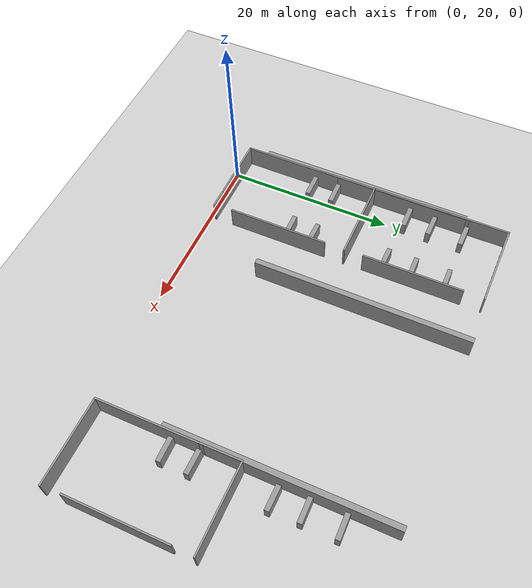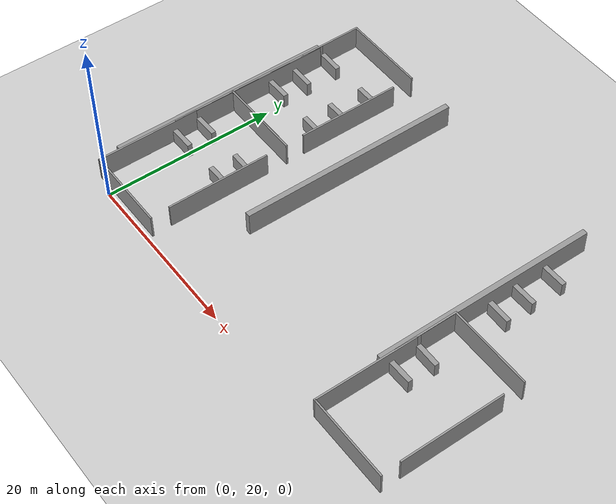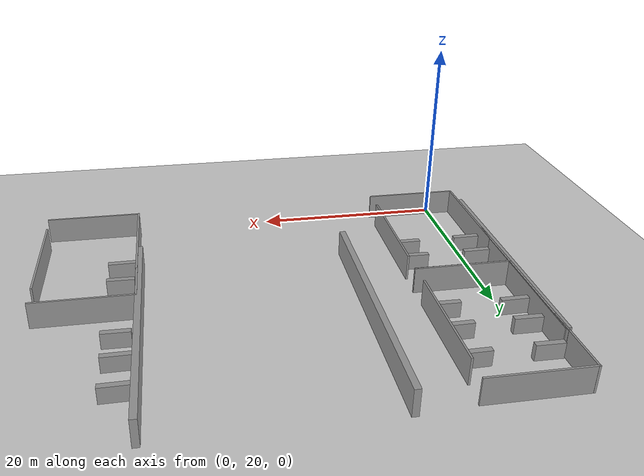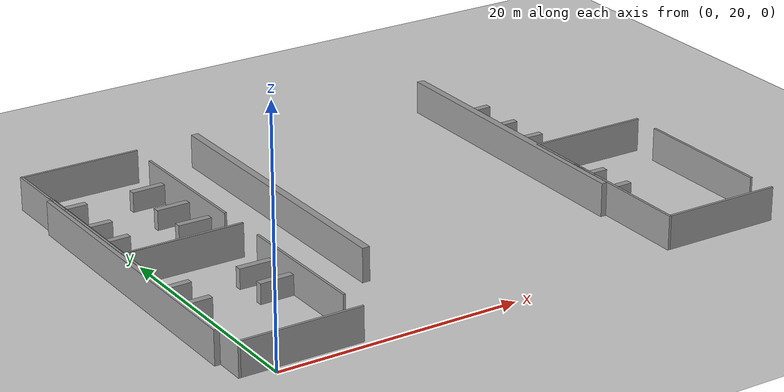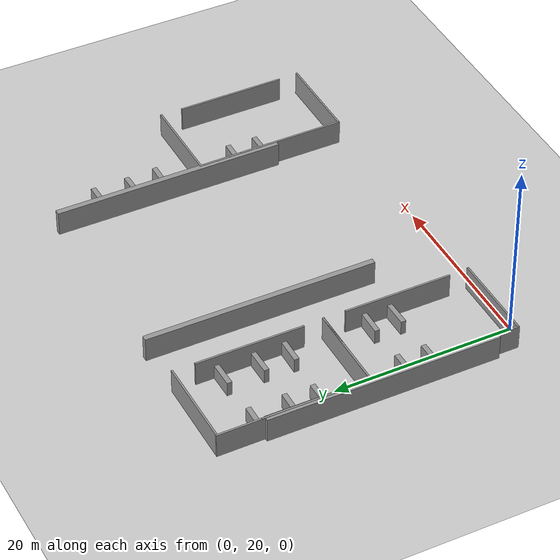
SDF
<sdf version="1.7">
 <world name="default">
  <model name="ground_plane">
   <static>1</static>
   <link name="link">
    <collision name="collision">
     <geometry><plane><normal>0 0 1</normal><size>100 100</size></plane></geometry>
     <surface><friction><ode><mu>100</mu><mu2>50</mu2></ode></friction></surface>
    </collision>
    <visual name="visual">
     <cast_shadows>0</cast_shadows>
     <geometry><plane><normal>0 0 1</normal><size>100 100</size></plane></geometry>
     <material>
      <script><uri>file://media/materials/scripts/gazebo.material</uri><name>Gazebo/Grey</name></script>
     </material>
    </visual>
   </link>
  </model>
  <model name="grew_wall_long_vertial_0">
   <model name="grey_wall_long">
    <link name="link">
     <pose>0 0 1.37589 0 -0 0</pose>
     <inertial>
      <inertia><ixx>0</ixx><ixy>0</ixy><ixz>0</ixz><iyy>0</iyy><iyz>0</iyz><izz>0</izz></inertia>
      <mass>0</mass>
     </inertial>
     <visual name="visual">
      <cast_shadows>0</cast_shadows>
      <geometry><box><size>25.8815 0.642976 2.8</size></box></geometry>
      <material>
       <script>
        <uri>model://grey_wall/materials/scripts</uri>
        <uri>model://grey_wall/materials/textures</uri>
        <name>vrc/grey_wall</name>
       </script>
       <shader type="pixel"><normal_map>__default__</normal_map></shader>
       <ambient>1 1 1 1</ambient>
       <diffuse>1 1 1 1</diffuse>
       <specular>0 0 0 1</specular>
       <emissive>0 0 0 1</emissive>
      </material>
     </visual>
     <collision name="collision">
      <geometry><box><size>25.8815 0.642976 2.8</size></box></geometry>
      <surface>
       <friction>
        <ode><mu>1</mu><mu2>1</mu2><fdir1>0 0 0</fdir1><slip1>0</slip1><slip2>0</slip2></ode>
        <torsional>
         <coefficient>1</coefficient>
         <patch_radius>0</patch_radius>
         <surface_radius>0</surface_radius>
         <use_patch_radius>1</use_patch_radius>
         <ode><slip>0</slip></ode>
        </torsional>
       </friction>
       <bounce><restitution_coefficient>0</restitution_coefficient><threshold>1e+06</threshold></bounce>
       <contact>
        <collide_without_contact>0</collide_without_contact>
        <collide_without_contact_bitmask>1</collide_without_contact_bitmask>
        <collide_bitmask>1</collide_bitmask>
        <ode>
         <soft_cfm>0</soft_cfm>
         <soft_erp>0.2</soft_erp>
         <kp>1e+13</kp>
         <kd>1</kd>
         <max_vel>0.01</max_vel>
         <min_depth>0</min_depth>
        </ode>
        <bullet>
         <split_impulse>1</split_impulse>
         <split_impulse_penetration_threshold>-0.01</split_impulse_penetration_threshold>
         <soft_cfm>0</soft_cfm>
         <soft_erp>0.2</soft_erp>
         <kp>1e+13</kp>
         <kd>1</kd>
        </bullet>
       </contact>
      </surface>
     </collision>
    </link>
    <static>1</static>
    <pose>1e-06 -0 0 0 -0 1.57003</pose>
   </model>
   <static>0</static>
   <pose>-2.79602 36.045 0 0 -0 0</pose>
  </model>
  <model name="jiaoshi_clone">
   <model name="grey_wall">
    <static>1</static>
    <link name="link">
     <pose>0 0 1.4 0 -0 0</pose>
     <collision name="collision"><geometry><box><size>7.5 0.2 2.8</size></box></geometry></collision>
     <visual name="visual">
      <cast_shadows>0</cast_shadows>
      <geometry><box><size>7.5 0.2 2.8</size></box></geometry>
      <material>
       <script>
        <uri>model://grey_wall/materials/scripts</uri>
        <uri>model://grey_wall/materials/textures</uri>
        <name>vrc/grey_wall</name>
       </script>
      </material>
     </visual>
    </link>
    <pose>-3.38172 4.2623 0 0 0 -1.56473</pose>
   </model>
   <model name="grey_wall_10m">
    <link name="link">
     <pose>1.25079 -0.023082 1.4 0 -0 0</pose>
     <inertial>
      <inertia><ixx>0</ixx><ixy>0</ixy><ixz>0</ixz><iyy>0</iyy><iyz>0</iyz><izz>0</izz></inertia>
      <mass>0</mass>
     </inertial>
     <visual name="visual">
      <cast_shadows>0</cast_shadows>
      <geometry><box><size>10.0157 0.2 2.8</size></box></geometry>
      <material>
       <script>
        <uri>model://grey_wall/materials/scripts</uri>
        <uri>model://grey_wall/materials/textures</uri>
        <name>vrc/grey_wall</name>
       </script>
       <shader type="pixel"/>
       <ambient>1 1 1 1</ambient>
       <diffuse>1 1 1 1</diffuse>
       <specular>0 0 0 1</specular>
       <emissive>0 0 0 1</emissive>
      </material>
     </visual>
     <collision name="collision">
      <geometry><box><size>10.0157 0.2 2.8</size></box></geometry>
      <surface>
       <friction>
        <ode><mu>1</mu><mu2>1</mu2><fdir1>0 0 0</fdir1><slip1>0</slip1><slip2>0</slip2></ode>
        <torsional>
         <coefficient>1</coefficient>
         <patch_radius>0</patch_radius>
         <surface_radius>0</surface_radius>
         <use_patch_radius>1</use_patch_radius>
         <ode><slip>0</slip></ode>
        </torsional>
       </friction>
       <bounce><restitution_coefficient>0</restitution_coefficient><threshold>1e+06</threshold></bounce>
       <contact>
        <collide_without_contact>0</collide_without_contact>
        <collide_without_contact_bitmask>1</collide_without_contact_bitmask>
        <collide_bitmask>1</collide_bitmask>
        <ode>
         <soft_cfm>0</soft_cfm>
         <soft_erp>0.2</soft_erp>
         <kp>1e+13</kp>
         <kd>1</kd>
         <max_vel>0.01</max_vel>
         <min_depth>0</min_depth>
        </ode>
        <bullet>
         <split_impulse>1</split_impulse>
         <split_impulse_penetration_threshold>-0.01</split_impulse_penetration_threshold>
         <soft_cfm>0</soft_cfm>
         <soft_erp>0.2</soft_erp>
         <kp>1e+13</kp>
         <kd>1</kd>
        </bullet>
       </contact>
      </surface>
     </collision>
    </link>
    <static>1</static>
    <pose>0.433183 -8.77625 0 0 -0 0</pose>
   </model>
   <model name="grey_wall_10m_0">
    <link name="link">
     <pose>1.25079 -0.023082 1.4 0 -0 0</pose>
     <inertial>
      <inertia><ixx>0</ixx><ixy>0</ixy><ixz>0</ixz><iyy>0</iyy><iyz>0</iyz><izz>0</izz></inertia>
      <mass>0</mass>
     </inertial>
     <visual name="visual">
      <cast_shadows>0</cast_shadows>
      <geometry><box><size>10.0157 0.2 2.8</size></box></geometry>
      <material>
       <script>
        <uri>model://grey_wall/materials/scripts</uri>
        <uri>model://grey_wall/materials/textures</uri>
        <name>vrc/grey_wall</name>
       </script>
       <shader type="pixel"/>
       <ambient>1 1 1 1</ambient>
       <diffuse>1 1 1 1</diffuse>
       <specular>0 0 0 1</specular>
       <emissive>0 0 0 1</emissive>
      </material>
     </visual>
     <collision name="collision">
      <geometry><box><size>10.0157 0.2 2.8</size></box></geometry>
      <surface>
       <friction>
        <ode><mu>1</mu><mu2>1</mu2><fdir1>0 0 0</fdir1><slip1>0</slip1><slip2>0</slip2></ode>
        <torsional>
         <coefficient>1</coefficient>
         <patch_radius>0</patch_radius>
         <surface_radius>0</surface_radius>
         <use_patch_radius>1</use_patch_radius>
         <ode><slip>0</slip></ode>
        </torsional>
       </friction>
       <bounce><restitution_coefficient>0</restitution_coefficient><threshold>1e+06</threshold></bounce>
       <contact>
        <collide_without_contact>0</collide_without_contact>
        <collide_without_contact_bitmask>1</collide_without_contact_bitmask>
        <collide_bitmask>1</collide_bitmask>
        <ode>
         <soft_cfm>0</soft_cfm>
         <soft_erp>0.2</soft_erp>
         <kp>1e+13</kp>
         <kd>1</kd>
         <max_vel>0.01</max_vel>
         <min_depth>0</min_depth>
        </ode>
        <bullet>
         <split_impulse>1</split_impulse>
         <split_impulse_penetration_threshold>-0.01</split_impulse_penetration_threshold>
         <soft_cfm>0</soft_cfm>
         <soft_erp>0.2</soft_erp>
         <kp>1e+13</kp>
         <kd>1</kd>
        </bullet>
       </contact>
      </surface>
     </collision>
    </link>
    <static>1</static>
    <pose>0.377364 7.92573 0 0 -0 0</pose>
   </model>
   <model name="grey_wall_12m_vertial">
    <link name="link">
     <pose>0.289112 -0.003891 1.4 0 0 -1.5701</pose>
     <inertial>
      <inertia><ixx>0</ixx><ixy>0</ixy><ixz>0</ixz><iyy>0</iyy><iyz>0</iyz><izz>0</izz></inertia>
      <mass>0</mass>
     </inertial>
     <visual name="visual">
      <cast_shadows>0</cast_shadows>
      <geometry><box><size>12.0527 0.2 2.8</size></box></geometry>
      <material>
       <script>
        <uri>model://grey_wall/materials/scripts</uri>
        <uri>model://grey_wall/materials/textures</uri>
        <name>vrc/grey_wall</name>
       </script>
       <shader type="pixel"/>
       <ambient>1 1 1 1</ambient>
       <diffuse>1 1 1 1</diffuse>
       <specular>0 0 0 1</specular>
       <emissive>0 0 0 1</emissive>
      </material>
     </visual>
     <collision name="collision">
      <geometry><box><size>12.0527 0.2 2.8</size></box></geometry>
      <surface>
       <friction>
        <ode><mu>1</mu><mu2>1</mu2><fdir1>0 0 0</fdir1><slip1>0</slip1><slip2>0</slip2></ode>
        <torsional>
         <coefficient>1</coefficient>
         <patch_radius>0</patch_radius>
         <surface_radius>0</surface_radius>
         <use_patch_radius>1</use_patch_radius>
         <ode><slip>0</slip></ode>
        </torsional>
       </friction>
       <bounce><restitution_coefficient>0</restitution_coefficient><threshold>1e+06</threshold></bounce>
       <contact>
        <collide_without_contact>0</collide_without_contact>
        <collide_without_contact_bitmask>1</collide_without_contact_bitmask>
        <collide_bitmask>1</collide_bitmask>
        <ode>
         <soft_cfm>0</soft_cfm>
         <soft_erp>0.2</soft_erp>
         <kp>1e+13</kp>
         <kd>1</kd>
         <max_vel>0.01</max_vel>
         <min_depth>0</min_depth>
        </ode>
        <bullet>
         <split_impulse>1</split_impulse>
         <split_impulse_penetration_threshold>-0.01</split_impulse_penetration_threshold>
         <soft_cfm>0</soft_cfm>
         <soft_erp>0.2</soft_erp>
         <kp>1e+13</kp>
         <kd>1</kd>
        </bullet>
       </contact>
      </surface>
     </collision>
    </link>
    <static>1</static>
    <pose>-3.63668 -2.87268 0 0 -0 0</pose>
   </model>
   <model name="grey_wall_12m_vertial_0">
    <link name="link">
     <pose>0.289112 -0.003891 1.4 0 0 -1.5701</pose>
     <inertial>
      <inertia><ixx>0</ixx><ixy>0</ixy><ixz>0</ixz><iyy>0</iyy><iyz>0</iyz><izz>0</izz></inertia>
      <mass>0</mass>
     </inertial>
     <visual name="visual">
      <cast_shadows>0</cast_shadows>
      <geometry><box><size>12.0527 0.2 2.8</size></box></geometry>
      <material>
       <script>
        <uri>model://grey_wall/materials/scripts</uri>
        <uri>model://grey_wall/materials/textures</uri>
        <name>vrc/grey_wall</name>
       </script>
       <shader type="pixel"/>
       <ambient>1 1 1 1</ambient>
       <diffuse>1 1 1 1</diffuse>
       <specular>0 0 0 1</specular>
       <emissive>0 0 0 1</emissive>
      </material>
     </visual>
     <collision name="collision">
      <geometry><box><size>12.0527 0.2 2.8</size></box></geometry>
      <surface>
       <friction>
        <ode><mu>1</mu><mu2>1</mu2><fdir1>0 0 0</fdir1><slip1>0</slip1><slip2>0</slip2></ode>
        <torsional>
         <coefficient>1</coefficient>
         <patch_radius>0</patch_radius>
         <surface_radius>0</surface_radius>
         <use_patch_radius>1</use_patch_radius>
         <ode><slip>0</slip></ode>
        </torsional>
       </friction>
       <bounce><restitution_coefficient>0</restitution_coefficient><threshold>1e+06</threshold></bounce>
       <contact>
        <collide_without_contact>0</collide_without_contact>
        <collide_without_contact_bitmask>1</collide_without_contact_bitmask>
        <collide_bitmask>1</collide_bitmask>
        <ode>
         <soft_cfm>0</soft_cfm>
         <soft_erp>0.2</soft_erp>
         <kp>1e+13</kp>
         <kd>1</kd>
         <max_vel>0.01</max_vel>
         <min_depth>0</min_depth>
        </ode>
        <bullet>
         <split_impulse>1</split_impulse>
         <split_impulse_penetration_threshold>-0.01</split_impulse_penetration_threshold>
         <soft_cfm>0</soft_cfm>
         <soft_erp>0.2</soft_erp>
         <kp>1e+13</kp>
         <kd>1</kd>
        </bullet>
       </contact>
      </surface>
     </collision>
    </link>
    <static>1</static>
    <pose>6.20786 -0.539083 0 0 -0 0</pose>
   </model>
   <static>0</static>
   <pose>0.77997 29.5098 0 0 -0 0</pose>
  </model>
  <model name="jiaoshi_clone_clone">
   <model name="grey_wall">
    <static>1</static>
    <link name="link">
     <pose>0 0 1.4 0 -0 0</pose>
     <collision name="collision"><geometry><box><size>7.5 0.2 2.8</size></box></geometry></collision>
     <visual name="visual">
      <cast_shadows>0</cast_shadows>
      <geometry><box><size>7.5 0.2 2.8</size></box></geometry>
      <material>
       <script>
        <uri>model://grey_wall/materials/scripts</uri>
        <uri>model://grey_wall/materials/textures</uri>
        <name>vrc/grey_wall</name>
       </script>
      </material>
     </visual>
    </link>
    <pose>-3.38172 4.2623 0 0 0 -1.56473</pose>
   </model>
   <model name="grey_wall_10m">
    <link name="link">
     <pose>1.25079 -0.023082 1.4 0 -0 0</pose>
     <inertial>
      <inertia><ixx>0</ixx><ixy>0</ixy><ixz>0</ixz><iyy>0</iyy><iyz>0</iyz><izz>0</izz></inertia>
      <mass>0</mass>
     </inertial>
     <visual name="visual">
      <cast_shadows>0</cast_shadows>
      <geometry><box><size>10.0157 0.2 2.8</size></box></geometry>
      <material>
       <script>
        <uri>model://grey_wall/materials/scripts</uri>
        <uri>model://grey_wall/materials/textures</uri>
        <name>vrc/grey_wall</name>
       </script>
       <shader type="pixel"/>
       <ambient>1 1 1 1</ambient>
       <diffuse>1 1 1 1</diffuse>
       <specular>0 0 0 1</specular>
       <emissive>0 0 0 1</emissive>
      </material>
     </visual>
     <collision name="collision">
      <geometry><box><size>10.0157 0.2 2.8</size></box></geometry>
      <surface>
       <friction>
        <ode><mu>1</mu><mu2>1</mu2><fdir1>0 0 0</fdir1><slip1>0</slip1><slip2>0</slip2></ode>
        <torsional>
         <coefficient>1</coefficient>
         <patch_radius>0</patch_radius>
         <surface_radius>0</surface_radius>
         <use_patch_radius>1</use_patch_radius>
         <ode><slip>0</slip></ode>
        </torsional>
       </friction>
       <bounce><restitution_coefficient>0</restitution_coefficient><threshold>1e+06</threshold></bounce>
       <contact>
        <collide_without_contact>0</collide_without_contact>
        <collide_without_contact_bitmask>1</collide_without_contact_bitmask>
        <collide_bitmask>1</collide_bitmask>
        <ode>
         <soft_cfm>0</soft_cfm>
         <soft_erp>0.2</soft_erp>
         <kp>1e+13</kp>
         <kd>1</kd>
         <max_vel>0.01</max_vel>
         <min_depth>0</min_depth>
        </ode>
        <bullet>
         <split_impulse>1</split_impulse>
         <split_impulse_penetration_threshold>-0.01</split_impulse_penetration_threshold>
         <soft_cfm>0</soft_cfm>
         <soft_erp>0.2</soft_erp>
         <kp>1e+13</kp>
         <kd>1</kd>
        </bullet>
       </contact>
      </surface>
     </collision>
    </link>
    <static>1</static>
    <pose>0.433183 -8.77625 0 0 -0 0</pose>
   </model>
   <model name="grey_wall_10m_0">
    <link name="link">
     <pose>1.25079 -0.023082 1.4 0 -0 0</pose>
     <inertial>
      <inertia><ixx>0</ixx><ixy>0</ixy><ixz>0</ixz><iyy>0</iyy><iyz>0</iyz><izz>0</izz></inertia>
      <mass>0</mass>
     </inertial>
     <visual name="visual">
      <cast_shadows>0</cast_shadows>
      <geometry><box><size>10.0157 0.2 2.8</size></box></geometry>
      <material>
       <script>
        <uri>model://grey_wall/materials/scripts</uri>
        <uri>model://grey_wall/materials/textures</uri>
        <name>vrc/grey_wall</name>
       </script>
       <shader type="pixel"/>
       <ambient>1 1 1 1</ambient>
       <diffuse>1 1 1 1</diffuse>
       <specular>0 0 0 1</specular>
       <emissive>0 0 0 1</emissive>
      </material>
     </visual>
     <collision name="collision">
      <geometry><box><size>10.0157 0.2 2.8</size></box></geometry>
      <surface>
       <friction>
        <ode><mu>1</mu><mu2>1</mu2><fdir1>0 0 0</fdir1><slip1>0</slip1><slip2>0</slip2></ode>
        <torsional>
         <coefficient>1</coefficient>
         <patch_radius>0</patch_radius>
         <surface_radius>0</surface_radius>
         <use_patch_radius>1</use_patch_radius>
         <ode><slip>0</slip></ode>
        </torsional>
       </friction>
       <bounce><restitution_coefficient>0</restitution_coefficient><threshold>1e+06</threshold></bounce>
       <contact>
        <collide_without_contact>0</collide_without_contact>
        <collide_without_contact_bitmask>1</collide_without_contact_bitmask>
        <collide_bitmask>1</collide_bitmask>
        <ode>
         <soft_cfm>0</soft_cfm>
         <soft_erp>0.2</soft_erp>
         <kp>1e+13</kp>
         <kd>1</kd>
         <max_vel>0.01</max_vel>
         <min_depth>0</min_depth>
        </ode>
        <bullet>
         <split_impulse>1</split_impulse>
         <split_impulse_penetration_threshold>-0.01</split_impulse_penetration_threshold>
         <soft_cfm>0</soft_cfm>
         <soft_erp>0.2</soft_erp>
         <kp>1e+13</kp>
         <kd>1</kd>
        </bullet>
       </contact>
      </surface>
     </collision>
    </link>
    <static>1</static>
    <pose>0.377364 7.92573 0 0 -0 0</pose>
   </model>
   <model name="grey_wall_12m_vertial">
    <link name="link">
     <pose>0.289112 -0.003891 1.4 0 0 -1.5701</pose>
     <inertial>
      <inertia><ixx>0</ixx><ixy>0</ixy><ixz>0</ixz><iyy>0</iyy><iyz>0</iyz><izz>0</izz></inertia>
      <mass>0</mass>
     </inertial>
     <visual name="visual">
      <cast_shadows>0</cast_shadows>
      <geometry><box><size>12.0527 0.2 2.8</size></box></geometry>
      <material>
       <script>
        <uri>model://grey_wall/materials/scripts</uri>
        <uri>model://grey_wall/materials/textures</uri>
        <name>vrc/grey_wall</name>
       </script>
       <shader type="pixel"/>
       <ambient>1 1 1 1</ambient>
       <diffuse>1 1 1 1</diffuse>
       <specular>0 0 0 1</specular>
       <emissive>0 0 0 1</emissive>
      </material>
     </visual>
     <collision name="collision">
      <geometry><box><size>12.0527 0.2 2.8</size></box></geometry>
      <surface>
       <friction>
        <ode><mu>1</mu><mu2>1</mu2><fdir1>0 0 0</fdir1><slip1>0</slip1><slip2>0</slip2></ode>
        <torsional>
         <coefficient>1</coefficient>
         <patch_radius>0</patch_radius>
         <surface_radius>0</surface_radius>
         <use_patch_radius>1</use_patch_radius>
         <ode><slip>0</slip></ode>
        </torsional>
       </friction>
       <bounce><restitution_coefficient>0</restitution_coefficient><threshold>1e+06</threshold></bounce>
       <contact>
        <collide_without_contact>0</collide_without_contact>
        <collide_without_contact_bitmask>1</collide_without_contact_bitmask>
        <collide_bitmask>1</collide_bitmask>
        <ode>
         <soft_cfm>0</soft_cfm>
         <soft_erp>0.2</soft_erp>
         <kp>1e+13</kp>
         <kd>1</kd>
         <max_vel>0.01</max_vel>
         <min_depth>0</min_depth>
        </ode>
        <bullet>
         <split_impulse>1</split_impulse>
         <split_impulse_penetration_threshold>-0.01</split_impulse_penetration_threshold>
         <soft_cfm>0</soft_cfm>
         <soft_erp>0.2</soft_erp>
         <kp>1e+13</kp>
         <kd>1</kd>
        </bullet>
       </contact>
      </surface>
     </collision>
    </link>
    <static>1</static>
    <pose>-3.63668 -2.87268 0 0 -0 0</pose>
   </model>
   <model name="grey_wall_12m_vertial_0">
    <link name="link">
     <pose>0.289112 -0.003891 1.4 0 0 -1.5701</pose>
     <inertial>
      <inertia><ixx>0</ixx><ixy>0</ixy><ixz>0</ixz><iyy>0</iyy><iyz>0</iyz><izz>0</izz></inertia>
      <mass>0</mass>
     </inertial>
     <visual name="visual">
      <cast_shadows>0</cast_shadows>
      <geometry><box><size>12.0527 0.2 2.8</size></box></geometry>
      <material>
       <script>
        <uri>model://grey_wall/materials/scripts</uri>
        <uri>model://grey_wall/materials/textures</uri>
        <name>vrc/grey_wall</name>
       </script>
       <shader type="pixel"/>
       <ambient>1 1 1 1</ambient>
       <diffuse>1 1 1 1</diffuse>
       <specular>0 0 0 1</specular>
       <emissive>0 0 0 1</emissive>
      </material>
     </visual>
     <collision name="collision">
      <geometry><box><size>12.0527 0.2 2.8</size></box></geometry>
      <surface>
       <friction>
        <ode><mu>1</mu><mu2>1</mu2><fdir1>0 0 0</fdir1><slip1>0</slip1><slip2>0</slip2></ode>
        <torsional>
         <coefficient>1</coefficient>
         <patch_radius>0</patch_radius>
         <surface_radius>0</surface_radius>
         <use_patch_radius>1</use_patch_radius>
         <ode><slip>0</slip></ode>
        </torsional>
       </friction>
       <bounce><restitution_coefficient>0</restitution_coefficient><threshold>1e+06</threshold></bounce>
       <contact>
        <collide_without_contact>0</collide_without_contact>
        <collide_without_contact_bitmask>1</collide_without_contact_bitmask>
        <collide_bitmask>1</collide_bitmask>
        <ode>
         <soft_cfm>0</soft_cfm>
         <soft_erp>0.2</soft_erp>
         <kp>1e+13</kp>
         <kd>1</kd>
         <max_vel>0.01</max_vel>
         <min_depth>0</min_depth>
        </ode>
        <bullet>
         <split_impulse>1</split_impulse>
         <split_impulse_penetration_threshold>-0.01</split_impulse_penetration_threshold>
         <soft_cfm>0</soft_cfm>
         <soft_erp>0.2</soft_erp>
         <kp>1e+13</kp>
         <kd>1</kd>
        </bullet>
       </contact>
      </surface>
     </collision>
    </link>
    <static>1</static>
    <pose>6.20786 -0.539083 0 0 -0 0</pose>
   </model>
   <static>0</static>
   <pose>0.70017 46.2344 0 0 -0 0</pose>
  </model>
  <model name="grew_wall_long_vertial_1_clone">
   <model name="grey_wall_long">
    <link name="link">
     <pose>0 0 1.37589 0 -0 0</pose>
     <inertial>
      <inertia><ixx>0</ixx><ixy>0</ixy><ixz>0</ixz><iyy>0</iyy><iyz>0</iyz><izz>0</izz></inertia>
      <mass>0</mass>
     </inertial>
     <visual name="visual">
      <cast_shadows>0</cast_shadows>
      <geometry><box><size>25.8815 0.642976 2.8</size></box></geometry>
      <material>
       <script>
        <uri>model://grey_wall/materials/scripts</uri>
        <uri>model://grey_wall/materials/textures</uri>
        <name>vrc/grey_wall</name>
       </script>
       <shader type="pixel"><normal_map>__default__</normal_map></shader>
       <ambient>1 1 1 1</ambient>
       <diffuse>1 1 1 1</diffuse>
       <specular>0 0 0 1</specular>
       <emissive>0 0 0 1</emissive>
      </material>
     </visual>
     <collision name="collision">
      <geometry><box><size>25.8815 0.642976 2.8</size></box></geometry>
      <surface>
       <friction>
        <ode><mu>1</mu><mu2>1</mu2><fdir1>0 0 0</fdir1><slip1>0</slip1><slip2>0</slip2></ode>
        <torsional>
         <coefficient>1</coefficient>
         <patch_radius>0</patch_radius>
         <surface_radius>0</surface_radius>
         <use_patch_radius>1</use_patch_radius>
         <ode><slip>0</slip></ode>
        </torsional>
       </friction>
       <bounce><restitution_coefficient>0</restitution_coefficient><threshold>1e+06</threshold></bounce>
       <contact>
        <collide_without_contact>0</collide_without_contact>
        <collide_without_contact_bitmask>1</collide_without_contact_bitmask>
        <collide_bitmask>1</collide_bitmask>
        <ode>
         <soft_cfm>0</soft_cfm>
         <soft_erp>0.2</soft_erp>
         <kp>1e+13</kp>
         <kd>1</kd>
         <max_vel>0.01</max_vel>
         <min_depth>0</min_depth>
        </ode>
        <bullet>
         <split_impulse>1</split_impulse>
         <split_impulse_penetration_threshold>-0.01</split_impulse_penetration_threshold>
         <soft_cfm>0</soft_cfm>
         <soft_erp>0.2</soft_erp>
         <kp>1e+13</kp>
         <kd>1</kd>
        </bullet>
       </contact>
      </surface>
     </collision>
    </link>
    <static>1</static>
    <pose>1e-06 -0 0 0 -0 1.57003</pose>
   </model>
   <static>0</static>
   <pose>12.7931 41.69 0 0 -0 0</pose>
  </model>
  <model name="grew_wall_long_vertial_1_clone_clone">
   <model name="grey_wall_long">
    <link name="link">
     <pose>0 0 1.37589 0 -0 0</pose>
     <inertial>
      <inertia><ixx>0</ixx><ixy>0</ixy><ixz>0</ixz><iyy>0</iyy><iyz>0</iyz><izz>0</izz></inertia>
      <mass>0</mass>
     </inertial>
     <visual name="visual">
      <cast_shadows>0</cast_shadows>
      <geometry><box><size>25.8815 0.642976 2.8</size></box></geometry>
      <material>
       <script>
        <uri>model://grey_wall/materials/scripts</uri>
        <uri>model://grey_wall/materials/textures</uri>
        <name>vrc/grey_wall</name>
       </script>
       <shader type="pixel"><normal_map>__default__</normal_map></shader>
       <ambient>1 1 1 1</ambient>
       <diffuse>1 1 1 1</diffuse>
       <specular>0 0 0 1</specular>
       <emissive>0 0 0 1</emissive>
      </material>
     </visual>
     <collision name="collision">
      <geometry><box><size>25.8815 0.642976 2.8</size></box></geometry>
      <surface>
       <friction>
        <ode><mu>1</mu><mu2>1</mu2><fdir1>0 0 0</fdir1><slip1>0</slip1><slip2>0</slip2></ode>
        <torsional>
         <coefficient>1</coefficient>
         <patch_radius>0</patch_radius>
         <surface_radius>0</surface_radius>
         <use_patch_radius>1</use_patch_radius>
         <ode><slip>0</slip></ode>
        </torsional>
       </friction>
       <bounce><restitution_coefficient>0</restitution_coefficient><threshold>1e+06</threshold></bounce>
       <contact>
        <collide_without_contact>0</collide_without_contact>
        <collide_without_contact_bitmask>1</collide_without_contact_bitmask>
        <collide_bitmask>1</collide_bitmask>
        <ode>
         <soft_cfm>0</soft_cfm>
         <soft_erp>0.2</soft_erp>
         <kp>1e+13</kp>
         <kd>1</kd>
         <max_vel>0.01</max_vel>
         <min_depth>0</min_depth>
        </ode>
        <bullet>
         <split_impulse>1</split_impulse>
         <split_impulse_penetration_threshold>-0.01</split_impulse_penetration_threshold>
         <soft_cfm>0</soft_cfm>
         <soft_erp>0.2</soft_erp>
         <kp>1e+13</kp>
         <kd>1</kd>
        </bullet>
       </contact>
      </surface>
     </collision>
    </link>
    <static>1</static>
    <pose>1e-06 -0 0 0 -0 1.57003</pose>
   </model>
   <static>0</static>
   <pose>34.6302 41.653 0 0 -0 0</pose>
  </model>
  <model name="jiaoshi_clone_clone_clone_1">
   <model name="grey_wall">
    <static>1</static>
    <link name="link">
     <pose>0 0 1.4 0 -0 0</pose>
     <collision name="collision"><geometry><box><size>7.5 0.2 2.8</size></box></geometry></collision>
     <visual name="visual">
      <cast_shadows>0</cast_shadows>
      <geometry><box><size>7.5 0.2 2.8</size></box></geometry>
      <material>
       <script>
        <uri>model://grey_wall/materials/scripts</uri>
        <uri>model://grey_wall/materials/textures</uri>
        <name>vrc/grey_wall</name>
       </script>
      </material>
     </visual>
    </link>
    <pose>-3.38172 4.2623 0 0 0 -1.56473</pose>
   </model>
   <model name="grey_wall_10m">
    <link name="link">
     <pose>1.25079 -0.023082 1.4 0 -0 0</pose>
     <inertial>
      <inertia><ixx>0</ixx><ixy>0</ixy><ixz>0</ixz><iyy>0</iyy><iyz>0</iyz><izz>0</izz></inertia>
      <mass>0</mass>
     </inertial>
     <visual name="visual">
      <cast_shadows>0</cast_shadows>
      <geometry><box><size>10.0157 0.2 2.8</size></box></geometry>
      <material>
       <script>
        <uri>model://grey_wall/materials/scripts</uri>
        <uri>model://grey_wall/materials/textures</uri>
        <name>vrc/grey_wall</name>
       </script>
       <shader type="pixel"/>
       <ambient>1 1 1 1</ambient>
       <diffuse>1 1 1 1</diffuse>
       <specular>0 0 0 1</specular>
       <emissive>0 0 0 1</emissive>
      </material>
     </visual>
     <collision name="collision">
      <geometry><box><size>10.0157 0.2 2.8</size></box></geometry>
      <surface>
       <friction>
        <ode><mu>1</mu><mu2>1</mu2><fdir1>0 0 0</fdir1><slip1>0</slip1><slip2>0</slip2></ode>
        <torsional>
         <coefficient>1</coefficient>
         <patch_radius>0</patch_radius>
         <surface_radius>0</surface_radius>
         <use_patch_radius>1</use_patch_radius>
         <ode><slip>0</slip></ode>
        </torsional>
       </friction>
       <bounce><restitution_coefficient>0</restitution_coefficient><threshold>1e+06</threshold></bounce>
       <contact>
        <collide_without_contact>0</collide_without_contact>
        <collide_without_contact_bitmask>1</collide_without_contact_bitmask>
        <collide_bitmask>1</collide_bitmask>
        <ode>
         <soft_cfm>0</soft_cfm>
         <soft_erp>0.2</soft_erp>
         <kp>1e+13</kp>
         <kd>1</kd>
         <max_vel>0.01</max_vel>
         <min_depth>0</min_depth>
        </ode>
        <bullet>
         <split_impulse>1</split_impulse>
         <split_impulse_penetration_threshold>-0.01</split_impulse_penetration_threshold>
         <soft_cfm>0</soft_cfm>
         <soft_erp>0.2</soft_erp>
         <kp>1e+13</kp>
         <kd>1</kd>
        </bullet>
       </contact>
      </surface>
     </collision>
    </link>
    <static>1</static>
    <pose>0.433183 -8.77625 0 0 -0 0</pose>
   </model>
   <model name="grey_wall_10m_0">
    <link name="link">
     <pose>1.25079 -0.023082 1.4 0 -0 0</pose>
     <inertial>
      <inertia><ixx>0</ixx><ixy>0</ixy><ixz>0</ixz><iyy>0</iyy><iyz>0</iyz><izz>0</izz></inertia>
      <mass>0</mass>
     </inertial>
     <visual name="visual">
      <cast_shadows>0</cast_shadows>
      <geometry><box><size>10.0157 0.2 2.8</size></box></geometry>
      <material>
       <script>
        <uri>model://grey_wall/materials/scripts</uri>
        <uri>model://grey_wall/materials/textures</uri>
        <name>vrc/grey_wall</name>
       </script>
       <shader type="pixel"/>
       <ambient>1 1 1 1</ambient>
       <diffuse>1 1 1 1</diffuse>
       <specular>0 0 0 1</specular>
       <emissive>0 0 0 1</emissive>
      </material>
     </visual>
     <collision name="collision">
      <geometry><box><size>10.0157 0.2 2.8</size></box></geometry>
      <surface>
       <friction>
        <ode><mu>1</mu><mu2>1</mu2><fdir1>0 0 0</fdir1><slip1>0</slip1><slip2>0</slip2></ode>
        <torsional>
         <coefficient>1</coefficient>
         <patch_radius>0</patch_radius>
         <surface_radius>0</surface_radius>
         <use_patch_radius>1</use_patch_radius>
         <ode><slip>0</slip></ode>
        </torsional>
       </friction>
       <bounce><restitution_coefficient>0</restitution_coefficient><threshold>1e+06</threshold></bounce>
       <contact>
        <collide_without_contact>0</collide_without_contact>
        <collide_without_contact_bitmask>1</collide_without_contact_bitmask>
        <collide_bitmask>1</collide_bitmask>
        <ode>
         <soft_cfm>0</soft_cfm>
         <soft_erp>0.2</soft_erp>
         <kp>1e+13</kp>
         <kd>1</kd>
         <max_vel>0.01</max_vel>
         <min_depth>0</min_depth>
        </ode>
        <bullet>
         <split_impulse>1</split_impulse>
         <split_impulse_penetration_threshold>-0.01</split_impulse_penetration_threshold>
         <soft_cfm>0</soft_cfm>
         <soft_erp>0.2</soft_erp>
         <kp>1e+13</kp>
         <kd>1</kd>
        </bullet>
       </contact>
      </surface>
     </collision>
    </link>
    <static>1</static>
    <pose>0.377364 7.92573 0 0 -0 0</pose>
   </model>
   <model name="grey_wall_12m_vertial">
    <link name="link">
     <pose>0.289112 -0.003891 1.4 0 0 -1.5701</pose>
     <inertial>
      <inertia><ixx>0</ixx><ixy>0</ixy><ixz>0</ixz><iyy>0</iyy><iyz>0</iyz><izz>0</izz></inertia>
      <mass>0</mass>
     </inertial>
     <visual name="visual">
      <cast_shadows>0</cast_shadows>
      <geometry><box><size>12.0527 0.2 2.8</size></box></geometry>
      <material>
       <script>
        <uri>model://grey_wall/materials/scripts</uri>
        <uri>model://grey_wall/materials/textures</uri>
        <name>vrc/grey_wall</name>
       </script>
       <shader type="pixel"/>
       <ambient>1 1 1 1</ambient>
       <diffuse>1 1 1 1</diffuse>
       <specular>0 0 0 1</specular>
       <emissive>0 0 0 1</emissive>
      </material>
     </visual>
     <collision name="collision">
      <geometry><box><size>12.0527 0.2 2.8</size></box></geometry>
      <surface>
       <friction>
        <ode><mu>1</mu><mu2>1</mu2><fdir1>0 0 0</fdir1><slip1>0</slip1><slip2>0</slip2></ode>
        <torsional>
         <coefficient>1</coefficient>
         <patch_radius>0</patch_radius>
         <surface_radius>0</surface_radius>
         <use_patch_radius>1</use_patch_radius>
         <ode><slip>0</slip></ode>
        </torsional>
       </friction>
       <bounce><restitution_coefficient>0</restitution_coefficient><threshold>1e+06</threshold></bounce>
       <contact>
        <collide_without_contact>0</collide_without_contact>
        <collide_without_contact_bitmask>1</collide_without_contact_bitmask>
        <collide_bitmask>1</collide_bitmask>
        <ode>
         <soft_cfm>0</soft_cfm>
         <soft_erp>0.2</soft_erp>
         <kp>1e+13</kp>
         <kd>1</kd>
         <max_vel>0.01</max_vel>
         <min_depth>0</min_depth>
        </ode>
        <bullet>
         <split_impulse>1</split_impulse>
         <split_impulse_penetration_threshold>-0.01</split_impulse_penetration_threshold>
         <soft_cfm>0</soft_cfm>
         <soft_erp>0.2</soft_erp>
         <kp>1e+13</kp>
         <kd>1</kd>
        </bullet>
       </contact>
      </surface>
     </collision>
    </link>
    <static>1</static>
    <pose>-3.63668 -2.87268 0 0 -0 0</pose>
   </model>
   <model name="grey_wall_12m_vertial_0">
    <link name="link">
     <pose>0.289112 -0.003891 1.4 0 0 -1.5701</pose>
     <inertial>
      <inertia><ixx>0</ixx><ixy>0</ixy><ixz>0</ixz><iyy>0</iyy><iyz>0</iyz><izz>0</izz></inertia>
      <mass>0</mass>
     </inertial>
     <visual name="visual">
      <cast_shadows>0</cast_shadows>
      <geometry><box><size>12.0527 0.2 2.8</size></box></geometry>
      <material>
       <script>
        <uri>model://grey_wall/materials/scripts</uri>
        <uri>model://grey_wall/materials/textures</uri>
        <name>vrc/grey_wall</name>
       </script>
       <shader type="pixel"/>
       <ambient>1 1 1 1</ambient>
       <diffuse>1 1 1 1</diffuse>
       <specular>0 0 0 1</specular>
       <emissive>0 0 0 1</emissive>
      </material>
     </visual>
     <collision name="collision">
      <geometry><box><size>12.0527 0.2 2.8</size></box></geometry>
      <surface>
       <friction>
        <ode><mu>1</mu><mu2>1</mu2><fdir1>0 0 0</fdir1><slip1>0</slip1><slip2>0</slip2></ode>
        <torsional>
         <coefficient>1</coefficient>
         <patch_radius>0</patch_radius>
         <surface_radius>0</surface_radius>
         <use_patch_radius>1</use_patch_radius>
         <ode><slip>0</slip></ode>
        </torsional>
       </friction>
       <bounce><restitution_coefficient>0</restitution_coefficient><threshold>1e+06</threshold></bounce>
       <contact>
        <collide_without_contact>0</collide_without_contact>
        <collide_without_contact_bitmask>1</collide_without_contact_bitmask>
        <collide_bitmask>1</collide_bitmask>
        <ode>
         <soft_cfm>0</soft_cfm>
         <soft_erp>0.2</soft_erp>
         <kp>1e+13</kp>
         <kd>1</kd>
         <max_vel>0.01</max_vel>
         <min_depth>0</min_depth>
        </ode>
        <bullet>
         <split_impulse>1</split_impulse>
         <split_impulse_penetration_threshold>-0.01</split_impulse_penetration_threshold>
         <soft_cfm>0</soft_cfm>
         <soft_erp>0.2</soft_erp>
         <kp>1e+13</kp>
         <kd>1</kd>
        </bullet>
       </contact>
      </surface>
     </collision>
    </link>
    <static>1</static>
    <pose>6.20786 -0.539083 0 0 -0 0</pose>
   </model>
   <static>0</static>
   <pose>38.2231 29.9014 0 0 -0 0</pose>
  </model>
  <model name="unit_box">
   <pose>-1.06882 49.329 0.834396 0 -3.2e-05 -0.013391</pose>
   <link name="link">
    <inertial>
     <mass>1</mass>
     <inertia>
      <ixx>0.166667</ixx>
      <ixy>0</ixy>
      <ixz>0</ixz>
      <iyy>0.166667</iyy>
      <iyz>0</iyz>
      <izz>0.166667</izz>
     </inertia>
    </inertial>
    <collision name="collision"><geometry><box><size>2.81196 0.562598 1.66888</size></box></geometry></collision>
    <visual name="visual">
     <geometry><box><size>2.81196 0.562598 1.66888</size></box></geometry>
     <material>
      <script><name>Gazebo/Grey</name><uri>file://media/materials/scripts/gazebo.material</uri></script>
     </material>
    </visual>
   </link>
  </model>
  <model name="unit_box_clone">
   <pose>5.67121 49.3971 0.834396 -0 3.2e-05 0.012647</pose>
   <link name="link">
    <inertial>
     <mass>1</mass>
     <inertia>
      <ixx>0.166667</ixx>
      <ixy>0</ixy>
      <ixz>0</ixz>
      <iyy>0.166667</iyy>
      <iyz>0</iyz>
      <izz>0.166667</izz>
     </inertia>
    </inertial>
    <collision name="collision"><geometry><box><size>2.81196 0.562598 1.66888</size></box></geometry></collision>
    <visual name="visual">
     <geometry><box><size>2.81196 0.562598 1.66888</size></box></geometry>
     <material>
      <script><name>Gazebo/Grey</name><uri>file://media/materials/scripts/gazebo.material</uri></script>
     </material>
    </visual>
   </link>
  </model>
  <model name="unit_box_clone_0">
   <pose>-0.970473 45.3601 0.834396 -0 3.2e-05 -0.01368</pose>
   <link name="link">
    <inertial>
     <mass>1</mass>
     <inertia>
      <ixx>0.166667</ixx>
      <ixy>0</ixy>
      <ixz>0</ixz>
      <iyy>0.166667</iyy>
      <iyz>0</iyz>
      <izz>0.166667</izz>
     </inertia>
    </inertial>
    <collision name="collision"><geometry><box><size>2.81196 0.562598 1.66888</size></box></geometry></collision>
    <visual name="visual">
     <geometry><box><size>2.81196 0.562598 1.66888</size></box></geometry>
     <material>
      <script><name>Gazebo/Grey</name><uri>file://media/materials/scripts/gazebo.material</uri></script>
     </material>
    </visual>
   </link>
  </model>
  <model name="unit_box_clone_1">
   <pose>5.65492 45.356 0.834396 -0 -3.2e-05 0.013824</pose>
   <link name="link">
    <inertial>
     <mass>1</mass>
     <inertia>
      <ixx>0.166667</ixx>
      <ixy>0</ixy>
      <ixz>0</ixz>
      <iyy>0.166667</iyy>
      <iyz>0</iyz>
      <izz>0.166667</izz>
     </inertia>
    </inertial>
    <collision name="collision"><geometry><box><size>2.81196 0.562598 1.66888</size></box></geometry></collision>
    <visual name="visual">
     <geometry><box><size>2.81196 0.562598 1.66888</size></box></geometry>
     <material>
      <script><name>Gazebo/Grey</name><uri>file://media/materials/scripts/gazebo.material</uri></script>
     </material>
    </visual>
   </link>
  </model>
  <model name="unit_box_clone_2">
   <pose>-1.0539 42.2657 0.834396 0 -3.2e-05 0.013976</pose>
   <link name="link">
    <inertial>
     <mass>1</mass>
     <inertia>
      <ixx>0.166667</ixx>
      <ixy>0</ixy>
      <ixz>0</ixz>
      <iyy>0.166667</iyy>
      <iyz>0</iyz>
      <izz>0.166667</izz>
     </inertia>
    </inertial>
    <collision name="collision"><geometry><box><size>2.81196 0.562598 1.66888</size></box></geometry></collision>
    <visual name="visual">
     <geometry><box><size>2.81196 0.562598 1.66888</size></box></geometry>
     <material>
      <script><name>Gazebo/Grey</name><uri>file://media/materials/scripts/gazebo.material</uri></script>
     </material>
    </visual>
   </link>
  </model>
  <model name="unit_box_clone_3">
   <pose>5.67951 41.9763 0.834396 0 -3.2e-05 -0.013745</pose>
   <link name="link">
    <inertial>
     <mass>1</mass>
     <inertia>
      <ixx>0.166667</ixx>
      <ixy>0</ixy>
      <ixz>0</ixz>
      <iyy>0.166667</iyy>
      <iyz>0</iyz>
      <izz>0.166667</izz>
     </inertia>
    </inertial>
    <collision name="collision"><geometry><box><size>2.81196 0.562598 1.66888</size></box></geometry></collision>
    <visual name="visual">
     <geometry><box><size>2.81196 0.562598 1.66888</size></box></geometry>
     <material>
      <script><name>Gazebo/Grey</name><uri>file://media/materials/scripts/gazebo.material</uri></script>
     </material>
    </visual>
   </link>
  </model>
  <model name="unit_box_clone_4">
   <pose>-1.0436 32.8444 0.834396 0 3.2e-05 0.013822</pose>
   <link name="link">
    <inertial>
     <mass>1</mass>
     <inertia>
      <ixx>0.166667</ixx>
      <ixy>0</ixy>
      <ixz>0</ixz>
      <iyy>0.166667</iyy>
      <iyz>0</iyz>
      <izz>0.166667</izz>
     </inertia>
    </inertial>
    <collision name="collision"><geometry><box><size>2.81196 0.562598 1.66888</size></box></geometry></collision>
    <visual name="visual">
     <geometry><box><size>2.81196 0.562598 1.66888</size></box></geometry>
     <material>
      <script><name>Gazebo/Grey</name><uri>file://media/materials/scripts/gazebo.material</uri></script>
     </material>
    </visual>
   </link>
  </model>
  <model name="unit_box_clone_5">
   <pose>5.74779 32.8738 0.834396 0 -3.2e-05 -0.013974</pose>
   <link name="link">
    <inertial>
     <mass>1</mass>
     <inertia>
      <ixx>0.166667</ixx>
      <ixy>0</ixy>
      <ixz>0</ixz>
      <iyy>0.166667</iyy>
      <iyz>0</iyz>
      <izz>0.166667</izz>
     </inertia>
    </inertial>
    <collision name="collision"><geometry><box><size>2.81196 0.562598 1.66888</size></box></geometry></collision>
    <visual name="visual">
     <geometry><box><size>2.81196 0.562598 1.66888</size></box></geometry>
     <material>
      <script><name>Gazebo/Grey</name><uri>file://media/materials/scripts/gazebo.material</uri></script>
     </material>
    </visual>
   </link>
  </model>
  <model name="unit_box_clone_6">
   <pose>-1.01364 29.826 0.834396 -0 3.2e-05 0.012218</pose>
   <link name="link">
    <inertial>
     <mass>1</mass>
     <inertia>
      <ixx>0.166667</ixx>
      <ixy>0</ixy>
      <ixz>0</ixz>
      <iyy>0.166667</iyy>
      <iyz>0</iyz>
      <izz>0.166667</izz>
     </inertia>
    </inertial>
    <collision name="collision"><geometry><box><size>2.81196 0.562598 1.66888</size></box></geometry></collision>
    <visual name="visual">
     <geometry><box><size>2.81196 0.562598 1.66888</size></box></geometry>
     <material>
      <script><name>Gazebo/Grey</name><uri>file://media/materials/scripts/gazebo.material</uri></script>
     </material>
    </visual>
   </link>
  </model>
  <model name="unit_box_clone_7">
   <pose>5.74517 29.918 0.834396 0 3.2e-05 0.013435</pose>
   <link name="link">
    <inertial>
     <mass>1</mass>
     <inertia>
      <ixx>0.166667</ixx>
      <ixy>0</ixy>
      <ixz>0</ixz>
      <iyy>0.166667</iyy>
      <iyz>0</iyz>
      <izz>0.166667</izz>
     </inertia>
    </inertial>
    <collision name="collision"><geometry><box><size>2.81196 0.562598 1.66888</size></box></geometry></collision>
    <visual name="visual">
     <geometry><box><size>2.81196 0.562598 1.66888</size></box></geometry>
     <material>
      <script><name>Gazebo/Grey</name><uri>file://media/materials/scripts/gazebo.material</uri></script>
     </material>
    </visual>
   </link>
  </model>
  <model name="unit_box_clone_16">
   <pose>36.4336 49.0673 0.834396 -0 -3.2e-05 0.01397</pose>
   <link name="link">
    <inertial>
     <mass>1</mass>
     <inertia>
      <ixx>0.166667</ixx>
      <ixy>0</ixy>
      <ixz>0</ixz>
      <iyy>0.166667</iyy>
      <iyz>0</iyz>
      <izz>0.166667</izz>
     </inertia>
    </inertial>
    <collision name="collision"><geometry><box><size>2.81196 0.562598 1.66888</size></box></geometry></collision>
    <visual name="visual">
     <geometry><box><size>2.81196 0.562598 1.66888</size></box></geometry>
     <material>
      <script><name>Gazebo/Grey</name><uri>file://media/materials/scripts/gazebo.material</uri></script>
     </material>
    </visual>
   </link>
  </model>
  <model name="unit_box_clone_18">
   <pose>36.4507 45.1728 0.834396 -0 -3.2e-05 0.01364</pose>
   <link name="link">
    <inertial>
     <mass>1</mass>
     <inertia>
      <ixx>0.166667</ixx>
      <ixy>0</ixy>
      <ixz>0</ixz>
      <iyy>0.166667</iyy>
      <iyz>0</iyz>
      <izz>0.166667</izz>
     </inertia>
    </inertial>
    <collision name="collision"><geometry><box><size>2.81196 0.562598 1.66888</size></box></geometry></collision>
    <visual name="visual">
     <geometry><box><size>2.81196 0.562598 1.66888</size></box></geometry>
     <material>
      <script><name>Gazebo/Grey</name><uri>file://media/materials/scripts/gazebo.material</uri></script>
     </material>
    </visual>
   </link>
  </model>
  <model name="unit_box_clone_20">
   <pose>36.613 41.8509 0.834396 0 -3.2e-05 -0.013706</pose>
   <link name="link">
    <inertial>
     <mass>1</mass>
     <inertia>
      <ixx>0.166667</ixx>
      <ixy>0</ixy>
      <ixz>0</ixz>
      <iyy>0.166667</iyy>
      <iyz>0</iyz>
      <izz>0.166667</izz>
     </inertia>
    </inertial>
    <collision name="collision"><geometry><box><size>2.81196 0.562598 1.66888</size></box></geometry></collision>
    <visual name="visual">
     <geometry><box><size>2.81196 0.562598 1.66888</size></box></geometry>
     <material>
      <script><name>Gazebo/Grey</name><uri>file://media/materials/scripts/gazebo.material</uri></script>
     </material>
    </visual>
   </link>
  </model>
  <model name="unit_box_clone_22">
   <pose>36.5166 33.0746 0.834396 -0 3.2e-05 -0.01398</pose>
   <link name="link">
    <inertial>
     <mass>1</mass>
     <inertia>
      <ixx>0.166667</ixx>
      <ixy>0</ixy>
      <ixz>0</ixz>
      <iyy>0.166667</iyy>
      <iyz>0</iyz>
      <izz>0.166667</izz>
     </inertia>
    </inertial>
    <collision name="collision"><geometry><box><size>2.81196 0.562598 1.66888</size></box></geometry></collision>
    <visual name="visual">
     <geometry><box><size>2.81196 0.562598 1.66888</size></box></geometry>
     <material>
      <script><name>Gazebo/Grey</name><uri>file://media/materials/scripts/gazebo.material</uri></script>
     </material>
    </visual>
   </link>
  </model>
  <model name="unit_box_clone_24">
   <pose>36.4991 29.8831 0.834396 -0 -3.2e-05 0.013456</pose>
   <link name="link">
    <inertial>
     <mass>1</mass>
     <inertia>
      <ixx>0.166667</ixx>
      <ixy>0</ixy>
      <ixz>0</ixz>
      <iyy>0.166667</iyy>
      <iyz>0</iyz>
      <izz>0.166667</izz>
     </inertia>
    </inertial>
    <collision name="collision"><geometry><box><size>2.81196 0.562598 1.66888</size></box></geometry></collision>
    <visual name="visual">
     <geometry><box><size>2.81196 0.562598 1.66888</size></box></geometry>
     <material>
      <script><name>Gazebo/Grey</name><uri>file://media/materials/scripts/gazebo.material</uri></script>
     </material>
    </visual>
   </link>
  </model>
 </world>
</sdf>
